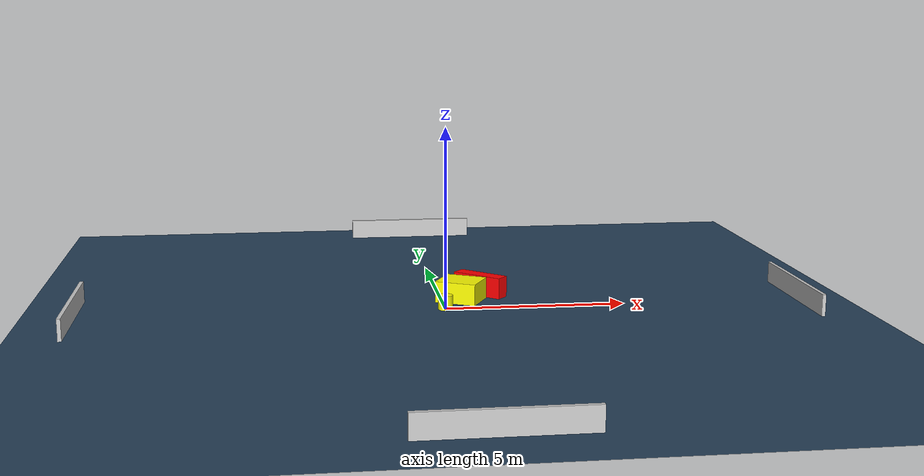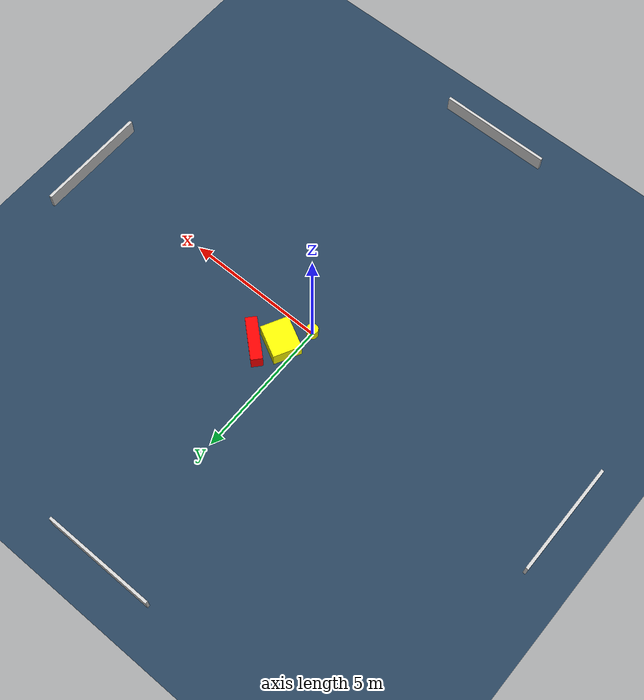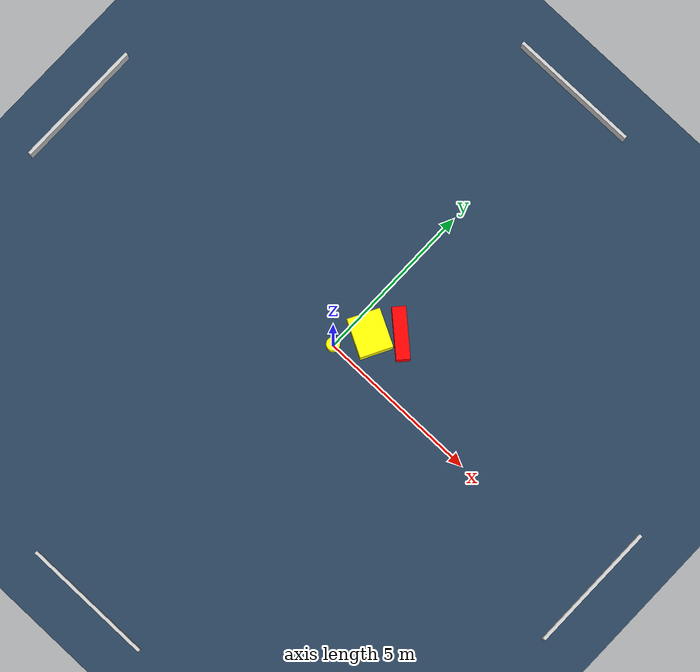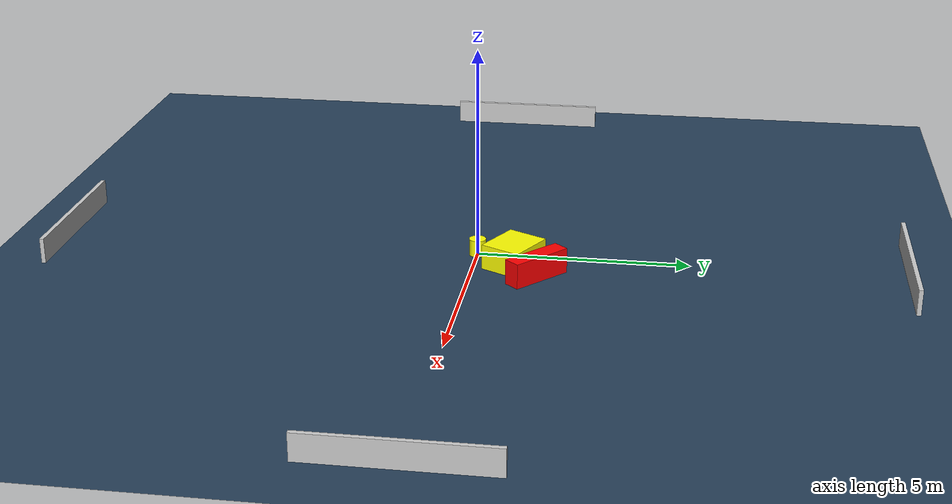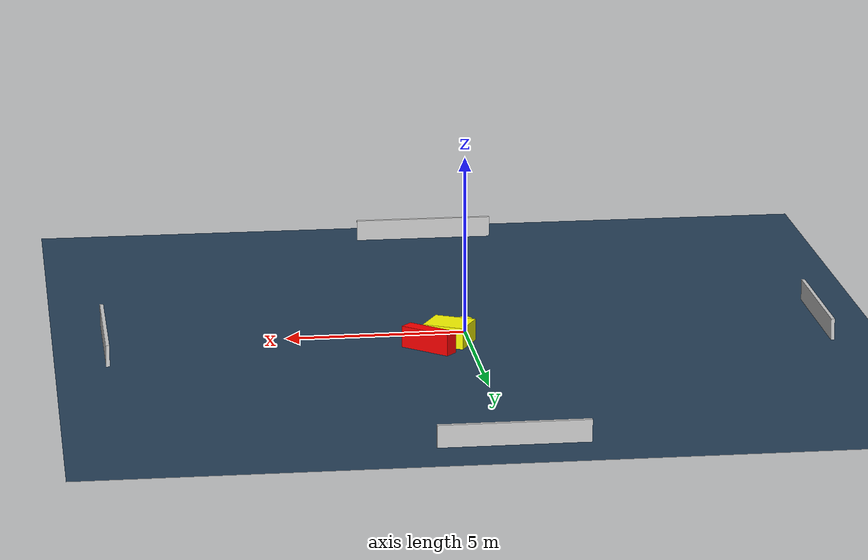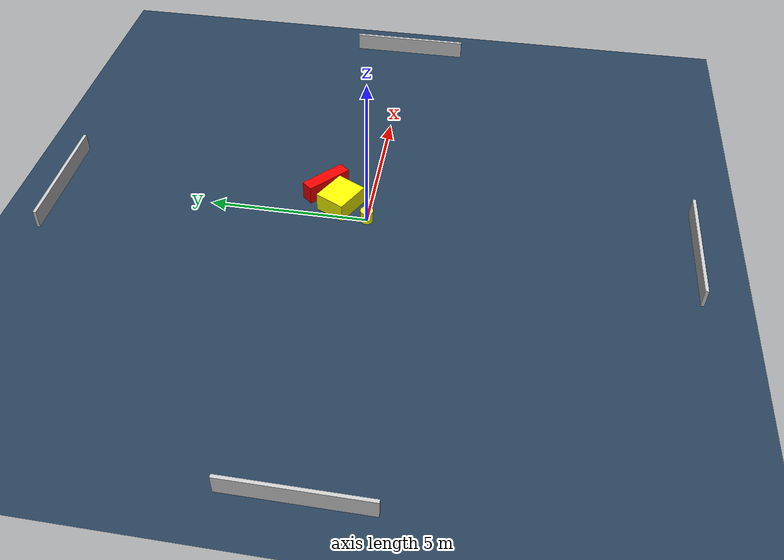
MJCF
<?xml version="1.0" ?>
<mujoco model="generated_environment">
  <option timestep="0.01" integrator="RK4" cone="elliptic"/>
  <default>
    <geom density="1"/>
  </default>
  <asset>
    <texture builtin="gradient" height="3072" name="skybox" rgb1="0.3 0.5 0.7" rgb2="0 0 0" type="skybox" width="512"/>
    <texture builtin="checker" height="300" name="groundplane" rgb1="0.2 0.3 0.4" rgb2="0.1 0.2 0.3" type="2d" width="300"/>
    <material name="groundplane" reflectance="0.2" texrepeat="5 5" texture="groundplane"/>
  </asset>
  <worldbody>
    <light dir="0 0 -1" directional="true" pos="0 0 1.5"/>
    <geom condim="3" friction="0.5 0.005 0.001" material="groundplane" name="floor" pos="0 0 0" size="0 0 0.05" type="plane"/>
    <body name="walls">
      <geom name="wall_1" condim="4" pos="-10.0 0.0 0.3" rgba="0.800000011920929 0.800000011920929 0.800000011920929 1.0" size="0.05 2.0 0.3" type="box"/>
      <geom name="wall_2" condim="4" pos="10.0 0.0 0.3" rgba="0.800000011920929 0.800000011920929 0.800000011920929 1.0" size="0.05 2.0 0.3" type="box"/>
      <geom name="wall_3" condim="4" pos="0.0 -10.0 0.3" rgba="0.800000011920929 0.800000011920929 0.800000011920929 1.0" size="2.0 0.05 0.3" type="box"/>
      <geom name="wall_4" condim="4" pos="0.0 10.0 0.3" rgba="0.800000011920929 0.800000011920929 0.800000011920929 1.0" size="2.0 0.05 0.3" type="box"/>
    </body>
    <body name="robot">
      <joint name="joint_x" type="slide" pos="0 0 0" axis="1 0 0"/>
      <joint name="joint_y" type="slide" pos="0 0 0" axis="0 1 0"/>
      <geom name="robot" type="cylinder" pos="0.0 0.0 0.2" size="0.2 0.2 0.0" mass="5.0" friction="1.0 0.005 0.0001" condim="4" rgba="1.0 1.0 0.0 1.0"/>
    </body>
    <body name="obstacle_1_movable">
      <geom name="obstacle_1_movable" condim="4" pos="0.5546765138239972 0.9315925076862515 0.3" euler="0 0 62.40746034834437" friction="0.0 0.005 0.001" rgba="1.0 1.0 0.0 1.0" size="0.49692232721101265 0.585595594629861 0.3" type="box" mass="0.1"/>
      <joint type="free"/>
    </body>
    <body name="obstacle_2_static">
      <geom name="obstacle_2_static" condim="4" pos="1.1930372389241706 1.5326894842432202 0.3" euler="0 0 138.04929657027301" friction="0.0 0.005 0.001" rgba="1.0 0.0 0.0 1.0" size="0.7598588538955158 0.2037393514322493 0.3" type="box"/>
    </body>
  </worldbody>
  <actuator>
    <motor name="actuator_x" joint="joint_x" gear="1" ctrlrange="-1 1"/>
    <motor name="actuator_y" joint="joint_y" gear="1" ctrlrange="-1 1"/>
  </actuator>
</mujoco>
